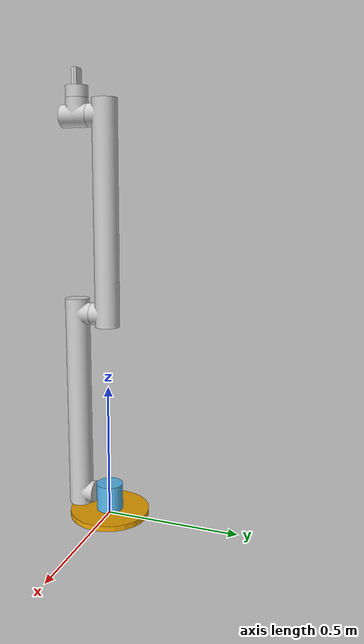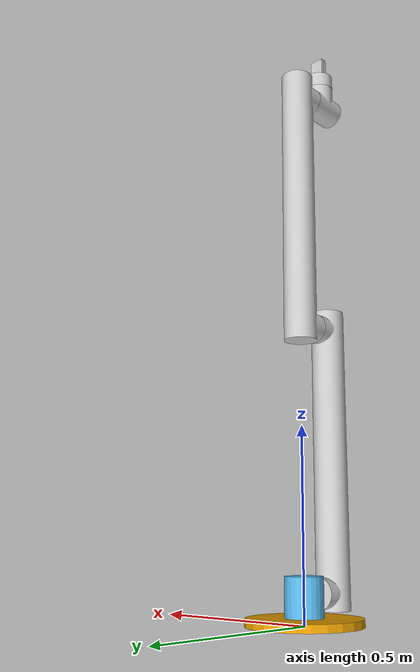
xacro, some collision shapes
<?xml version="1.0" ?>
<robot name="robot_5r-complete" xmlns:xacro="http://ros.org/wiki/xacro">

  <xacro:include filename="$(find robots_description)/urdf/robot_5r_macro.xacro" />
  <xacro:include filename="$(find robots_description)/urdf/parallel_fingers_macro.xacro" />

  <xacro:robot_5r prefix=""/>
  <xacro:parallel_fingers prefix=""/>

  <joint name="hand-palm" type="fixed">
    <parent link="hand"/>
    <child link="palm"/>
    <origin rpy="${-pi / 2.0} ${pi / 2.0} 0.0" xyz="0.0 -0.100 0.045"/>
    <axis xyz="0 0 1"/>
  </joint>

</robot>

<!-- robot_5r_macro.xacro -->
<robot xmlns:xacro="http://www.ros.org/wiki/xacro">

  <xacro:macro name="robot_5r" params="prefix">

    <link name="${prefix}base_link">
      <visual>
        <origin rpy="0.0 0.0 0.0" xyz="0.0 0.0 0.010"/>
        <geometry>
          <cylinder length="0.020" radius="0.150"/>
        </geometry>
      </visual>
      <collision>
        <origin rpy="0.0 0.0 0.0" xyz="0.0 0.0 0.010"/>
        <geometry>
          <cylinder length="0.020" radius="0.150"/>
        </geometry>
      </collision>
    </link>

    <link name="${prefix}shoulder">
      <visual>
        <origin rpy="0.0 0.0 0.0" xyz="0.0 0.0 0.0"/>
        <geometry>
          <mesh filename="package://robots_description/meshes/shoulder.dae"/>
        </geometry>
      </visual>
      <collision>
        <origin rpy="0.0 0.0 0.0" xyz="0.0 0.0 0.050"/>
        <geometry>
          <cylinder length="0.100" radius="0.050"/>
        </geometry>
      </collision>
    </link>

    <link name="${prefix}arm">
      <visual>
        <origin rpy="${-pi / 2.0} 0.0 0.0" xyz="0.0 -0.045 0.06"/>
        <geometry>
          <mesh filename="package://robots_description/meshes/arm.dae"/>
        </geometry>
      </visual>
      <collision>
        <origin rpy="${-pi / 2.0} 0.0 0.0" xyz="0.0 0.355 0.0523359"/>
        <geometry>
          <box size="0.090 0.105 0.800"/>
        </geometry>
      </collision>
    </link>

    <link name="${prefix}forearm">
      <visual>
        <origin rpy="${-pi / 2.0} 0.0 ${pi}" xyz="0.0 0.045 0.060"/>
        <geometry>
          <mesh filename="package://robots_description/meshes/arm.dae"/>
        </geometry>
      </visual>
      <collision>
        <origin rpy="${-pi / 2.0} 0.0 ${pi}" xyz="0.0 -0.355 0.0523359"/>
        <geometry>
          <box size="0.090 0.105 0.800"/>
        </geometry>
      </collision>
    </link>

    <link name="${prefix}hand">
      <visual>
        <origin rpy="0.0 0.0 0.0" xyz="0.0 0.0 0.0"/>
        <geometry>
          <mesh filename="package://robots_description/meshes/hand.dae"/>
        </geometry>
      </visual>
      <collision>
        <origin rpy="0.0 0.0 0.0" xyz="0.0 -0.0101 0.050"/>
        <geometry>
          <box size="0.080 0.100 0.100"/>
        </geometry>
      </collision>
    </link>

    <joint name="${prefix}base-shoulder" type="revolute">
      <parent link="${prefix}base_link"/>
      <child link="${prefix}shoulder"/>
      <origin rpy="0.0 0.0 0.0" xyz="0.0 0.0 0.020"/>
      <axis xyz="0 0 1"/>
      <limit effort="20.0" lower="${-pi}" upper="${pi}" velocity="1.0"/>
    </joint>

    <joint name="${prefix}shoulder-arm" type="revolute">
      <parent link="${prefix}shoulder"/>
      <child link="${prefix}arm"/>
      <origin rpy="${pi / 2.0} 0.0 0.0" xyz="0.0 -0.060 0.055"/>
      <axis xyz="0 0 1"/>
      <limit effort="50.0" lower="${-pi / 2.0}" upper="${pi / 2.0}" velocity="1.0"/>
    </joint>

    <joint name="${prefix}arm-forearm" type="revolute">
      <parent link="${prefix}arm"/>
      <child link="${prefix}forearm"/>
      <origin rpy="${pi} 0.0 0.0" xyz="0.0 0.700 0.0"/>
      <axis xyz="0 0 1"/>
      <limit effort="25.0" lower="${-radians(160)}" upper="${radians(160)}" velocity="1.0"/>
    </joint>

    <joint name="${prefix}forearm-hand" type="revolute">
      <parent link="${prefix}forearm"/>
      <child link="${prefix}hand"/>
      <origin rpy="${pi} 0.0 ${pi}" xyz="0.0 -0.700 0.0"/>
      <axis xyz="0 0 1"/>
      <limit effort="10.0" lower="${-pi}" upper="${pi}" velocity="1.0"/>
    </joint>

  </xacro:macro>

</robot>

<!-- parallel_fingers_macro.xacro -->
<robot xmlns:xacro="http://www.ros.org/wiki/xacro">

  <xacro:macro name="parallel_fingers" params="prefix">

    <link name="${prefix}palm">
      <visual>
	<origin rpy="0.0 0.0 0.0" xyz="0.0 0.0 0.0"/>
	<geometry>
	  <mesh filename="package://robots_description/meshes/palm.dae"/>
	</geometry>
      </visual>
      <collision>
	<origin rpy="0.0 0.0 0.0" xyz="0.0 0.0 0.020"/>
	<geometry>
	  <cylinder length="0.04" radius="0.04"/>
	</geometry>
      </collision>
    </link>

    <link name="${prefix}right_finger">
      <visual>
	<origin rpy="${-pi} ${pi / 2.0} 0.0" xyz="0.0 0.0 0.0"/>
	<geometry>
	  <mesh filename="package://robots_description/meshes/finger.dae"/>
	</geometry>
      </visual>
      <collision>
	<origin rpy="${-pi} ${pi / 2.0} 0.0" xyz="0.0 -0.030 0.0"/>
	<geometry>
	  <box size="0.010 0.060 0.040"/>
	</geometry>
      </collision>
    </link>

    <link name="${prefix}left_finger">
      <visual>
	<origin rpy="${pi} ${-pi / 2.0} 0.0" xyz="0.0 0.0 0.0"/>
	<geometry>
	  <mesh filename="package://robots_description/meshes/finger.dae"/>
	</geometry>
      </visual>
      <collision>
	<origin rpy="${-pi} ${-pi / 2.0} 0.0" xyz="0.0 -0.030 0.0"/>
	<geometry>
	  <box size="0.010 0.060 0.040"/>
	</geometry>
      </collision>
    </link>

    <joint name="${prefix}palm-right_finger" type="prismatic">
      <parent link="${prefix}palm"/>
      <child link="${prefix}right_finger"/>
      <origin rpy="${pi / 2.0} 0.0 ${pi / 2.0}" xyz="0.005 0.0 0.0"/>
      <axis xyz="0 0 1"/>
      <limit effort="10.0" lower="0.0" upper="0.020" velocity="0.0"/>
    </joint>

    <joint name="${prefix}palm-left_finger" type="prismatic">
      <parent link="${prefix}palm"/>
      <child link="${prefix}left_finger"/>
      <mimic joint="${prefix}palm-right_finger" multiplier="1.0" offset="0.0"/>
      <origin rpy="${pi / 2.0} 0.0 ${-pi / 2.0}" xyz="-0.005 0.0 0.0"/>
      <axis xyz="0 0 1"/>
      <limit effort="10.0" lower="0.0" upper="0.020" velocity="0.0"/>
    </joint>

  </xacro:macro>

</robot>
